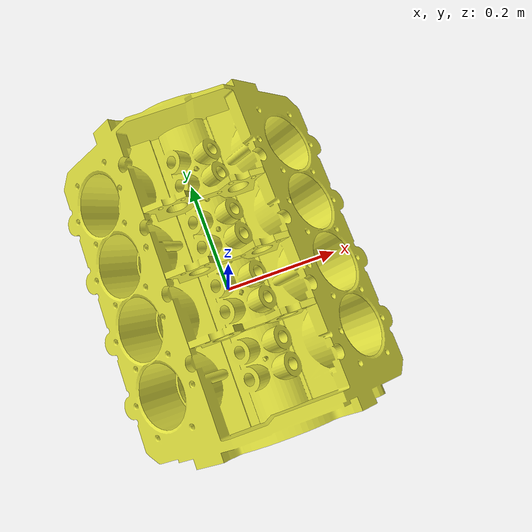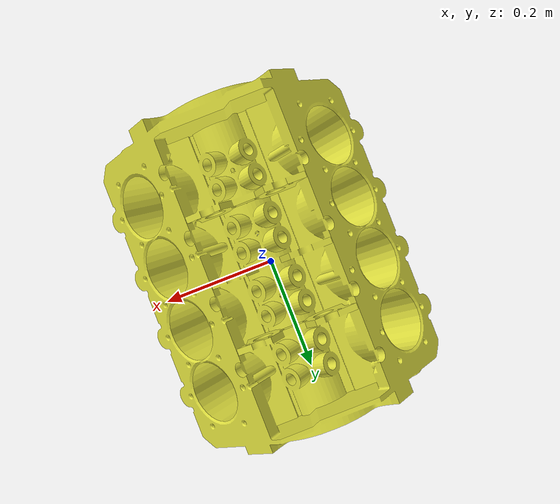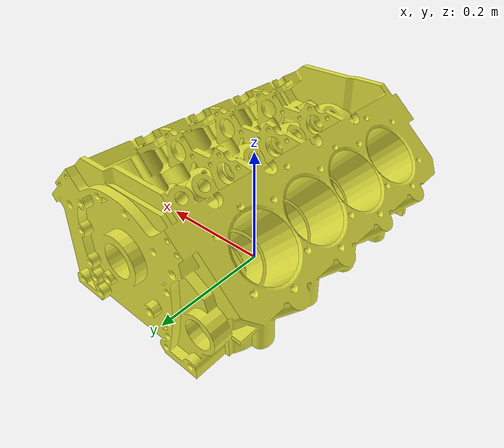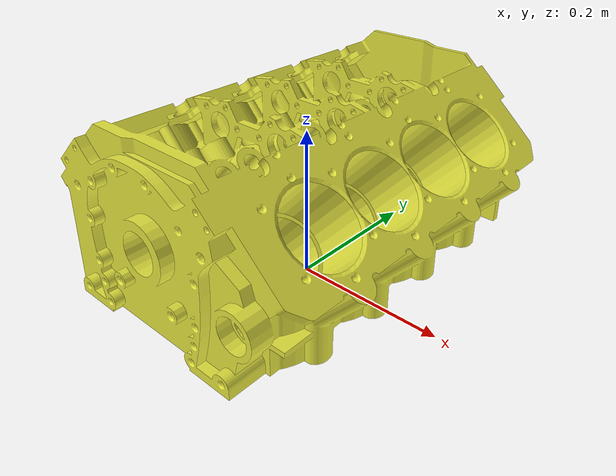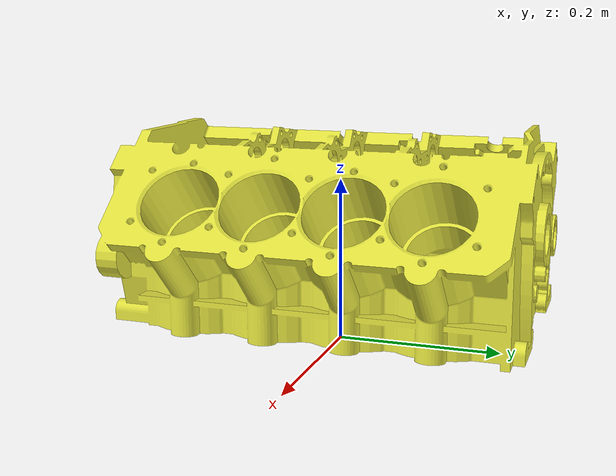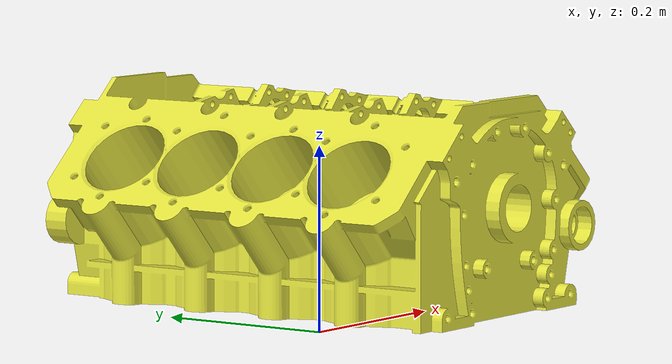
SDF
<?xml version="1.0" ?>
<sdf version="1.0">
  <model name="3d_engine_body">
    <link name="link">
      <pose>0 0 0.15 0 0 0</pose>
      <inertial>
        <pose>0.000289273 -0.003935282 -0.005881297 0 0 0</pose>
        <mass>50</mass>
        <inertia>
          <ixx>1.27291143886463</ixx>
          <ixy>-0.0116767671900775</ixy>
          <ixz>0.00104491533688111</ixz>
          <iyy>0.633064393076727</iyy>
          <iyz>-0.000737879314154236</iyz>
          <izz>1.63564622434518</izz>
        </inertia>
      </inertial>
      <collision name="collision">
        <pose>0 0 0 0 0 0</pose>
        <geometry>
          <mesh>
            <uri>model://3d_engine_body/body_0.01x.stl</uri>
          </mesh>
        </geometry>
        <surface>
          <friction>
            <ode>
              <mu>100000.0</mu>
              <mu2>100000.0</mu2>
            </ode>
          </friction>
          <contact>
            <ode>
              <kp>1000000.0</kp>
              <kd>1000000.0</kd>
              <min_depth>0.001</min_depth>
              <max_vel>0</max_vel>
            </ode>
          </contact>
        </surface>
      </collision>
      <visual name="visual">
        <pose>0 0 0 0 0 0</pose>
        <geometry>
          <mesh>
            <uri>model://3d_engine_body/body_0.01x.stl</uri>
          </mesh>
        </geometry>
<material>
          <ambient>0.9 0.9 0.25 1</ambient>
          <diffuse>0.9 0.9 0.25 1</diffuse>
          <specular>0.01 0.01 0.01 1</specular>
          <emissive>0 0 0 1</emissive>
          <shader type='vertex'>
            <normal_map>__default__</normal_map>
          </shader>
        </material>
        <cast_shadows>1</cast_shadows>
        <transparency>0</transparency>
      </visual>
    </link>
<static>0</static>
    <allow_auto_disable>1</allow_auto_disable>
  </model>
</sdf>
